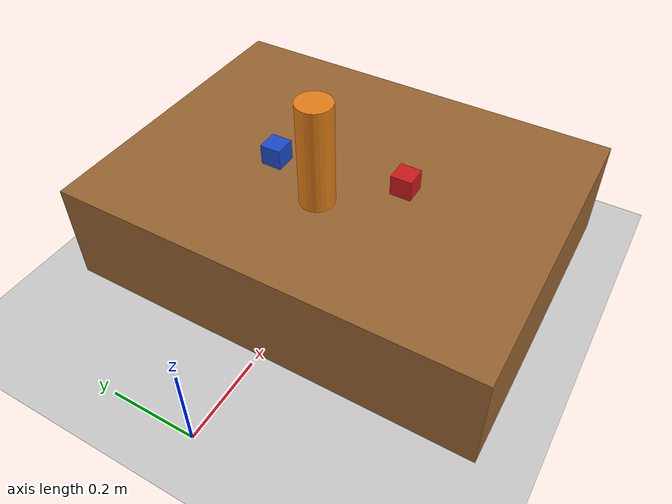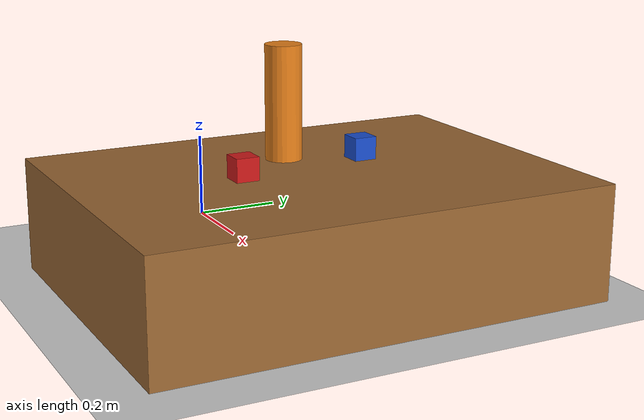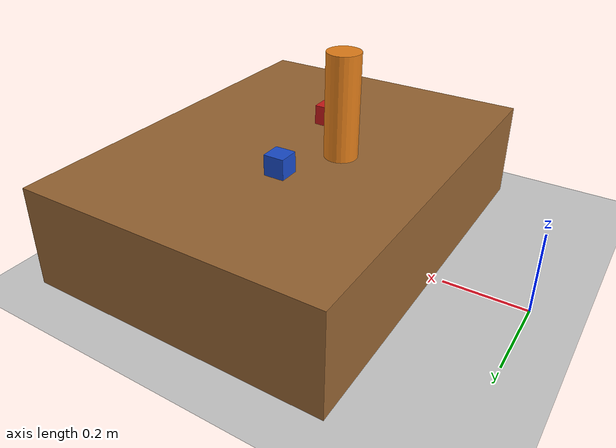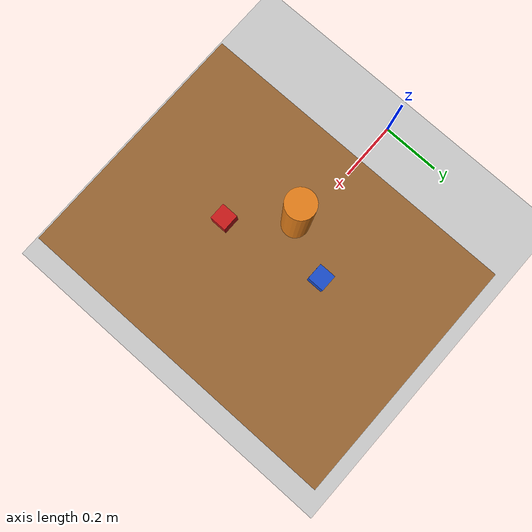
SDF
<?xml version="1.0" ?>
<sdf version="1.8">
  <world name="warehouse">
    <!-- Physics and Simulation Systems -->
    <plugin
      filename="gz-sim-physics-system"
      name="gz::sim::systems::Physics">
    </plugin>
    <plugin
      filename="gz-sim-user-commands-system"
      name="gz::sim::systems::UserCommands">
    </plugin>
    <plugin
      filename="gz-sim-scene-broadcaster-system"
      name="gz::sim::systems::SceneBroadcaster">
    </plugin>

    <!-- Global Light Source (Sun) -->
    <light type="directional" name="sun">
      <cast_shadows>true</cast_shadows>
      <pose>0 0 10 0 0 0</pose>
      <diffuse>0.8 0.8 0.8 1</diffuse>
      <specular>0.2 0.2 0.2 1</specular>
      <attenuation>
        <range>1000</range>
        <constant>0.9</constant>
        <linear>0.01</linear>
        <quadratic>0.001</quadratic>
      </attenuation>
      <direction>-0.5 0.1 -0.9</direction>
    </light>

    <!-- Ground Plane -->
    <model name="ground_plane">
      <static>true</static>
      <link name="link">
        <collision name="collision">
          <geometry>
            <plane>
              <normal>0 0 1</normal>
              <size>100 100</size>
            </plane>
          </geometry>
          <surface>
            <friction>
              <ode>
                <mu>100</mu>
                <mu2>50</mu2>
              </ode>
            </friction>
          </surface>
        </collision>
        <visual name="visual">
          <geometry>
            <plane>
              <normal>0 0 1</normal>
              <size>100 100</size>
            </plane>
          </geometry>
          <material>
            <ambient>0.8 0.8 0.8 1</ambient>
            <diffuse>0.8 0.8 0.8 1</diffuse>
            <specular>0.8 0.8 0.8 1</specular>
          </material>
        </visual>
      </link>
    </model>

    <!-- Table in front of the robot -->
    <model name="table">
      <static>true</static>
      <pose>0.6 0 0.125 0 0 0</pose>
      <link name="link">
        <collision name="surface">
          <pose>0 0 0.0 0 0 0</pose>
          <geometry>
            <box>
              <size>0.75 1.0 0.25</size>
            </box>
          </geometry>
          <surface>
            <friction>
              <ode>
                <mu>1.0</mu>
                <mu2>1.0</mu2>
              </ode>
            </friction>
          </surface>
        </collision>
        <visual name="visual">
          <pose>0 0 0.0 0 0 0</pose>
          <geometry>
            <box>
              <size>0.75 1.0 0.25</size>
            </box>
          </geometry>
          <material>
            <ambient>0.6 0.4 0.2 1</ambient>
            <diffuse>0.6 0.4 0.2 1</diffuse>
            <specular>0.1 0.1 0.1 1</specular>
          </material>
        </visual>
      </link>
    </model>

    <!-- Cube 1 (Blue) on the table -->
    <model name="cube1">
      <pose>0.55 0.15 0.275 0 0 0</pose>
      <link name="link">
        <inertial>
          <mass>0.1</mass>
          <inertia>
            <ixx>0.0001</ixx>
            <ixy>0</ixy>
            <ixz>0</ixz>
            <iyy>0.0001</iyy>
            <iyz>0</iyz>
            <izz>0.0001</izz>
          </inertia>
        </inertial>
        <collision name="collision">
          <geometry>
            <box>
              <size>0.05 0.05 0.05</size>
            </box>
          </geometry>
        </collision>
        <visual name="visual">
          <geometry>
            <box>
              <size>0.05 0.05 0.05</size>
            </box>
          </geometry>
          <material>
            <ambient>0.1 0.3 0.8 1</ambient>
            <diffuse>0.1 0.3 0.8 1</diffuse>
            <specular>0.2 0.2 0.2 1</specular>
          </material>
        </visual>
      </link>
    </model>

    <!-- Cube 2 (Red) on the table -->
    <model name="cube2">
      <pose>0.60 -0.15 0.275 0 0 0</pose>
      <link name="link">
        <inertial>
          <mass>0.1</mass>
          <inertia>
            <ixx>0.0001</ixx>
            <ixy>0</ixy>
            <ixz>0</ixz>
            <iyy>0.0001</iyy>
            <iyz>0</iyz>
            <izz>0.0001</izz>
          </inertia>
        </inertial>
        <collision name="collision">
          <geometry>
            <box>
              <size>0.05 0.05 0.05</size>
            </box>
          </geometry>
        </collision>
        <visual name="visual">
          <geometry>
            <box>
              <size>0.05 0.05 0.05</size>
            </box>
          </geometry>
          <material>
            <ambient>0.8 0.1 0.1 1</ambient>
            <diffuse>0.8 0.1 0.1 1</diffuse>
            <specular>0.2 0.2 0.2 1</specular>
          </material>
        </visual>
      </link>
    </model>

    <!-- Obstacle (Cylinder) on the table -->
    <model name="obstacle">
      <pose>0.48 0.0 0.375 0 0 0</pose>
      <link name="link">
        <inertial>
          <mass>0.3</mass>
          <inertia>
            <ixx>0.001</ixx>
            <ixy>0</ixy>
            <ixz>0</ixz>
            <iyy>0.001</iyy>
            <iyz>0</iyz>
            <izz>0.001</izz>
          </inertia>
        </inertial>
        <collision name="collision">
          <geometry>
            <cylinder>
              <radius>0.04</radius>
              <length>0.25</length>
            </cylinder>
          </geometry>
        </collision>
        <visual name="visual">
          <geometry>
            <cylinder>
              <radius>0.04</radius>
              <length>0.25</length>
            </cylinder>
          </geometry>
          <material>
            <ambient>0.9 0.5 0.1 1</ambient>
            <diffuse>0.9 0.5 0.1 1</diffuse>
            <specular>0.3 0.3 0.3 1</specular>
          </material>
        </visual>
      </link>
    </model>
  </world>
</sdf>
